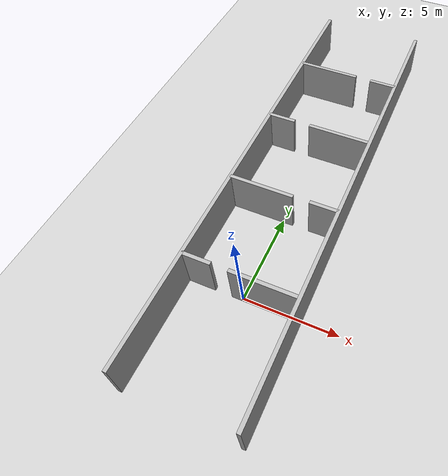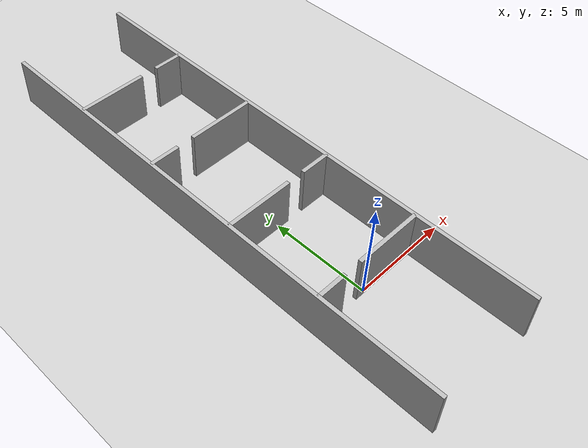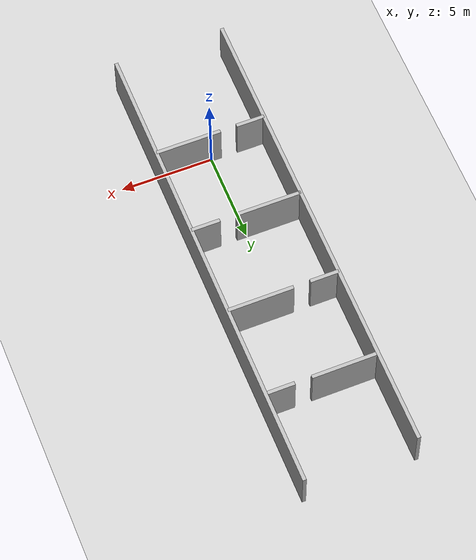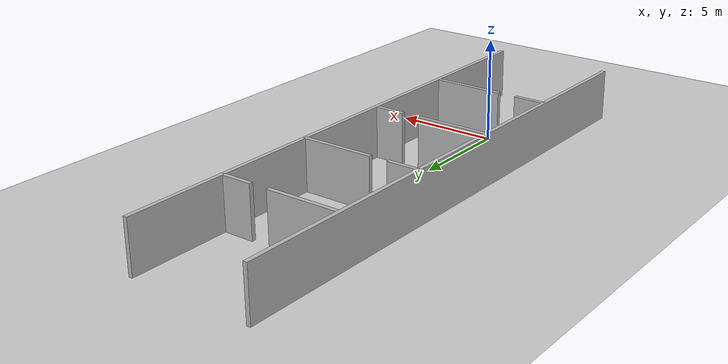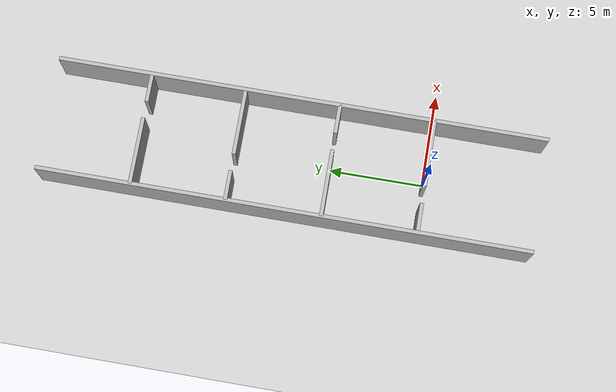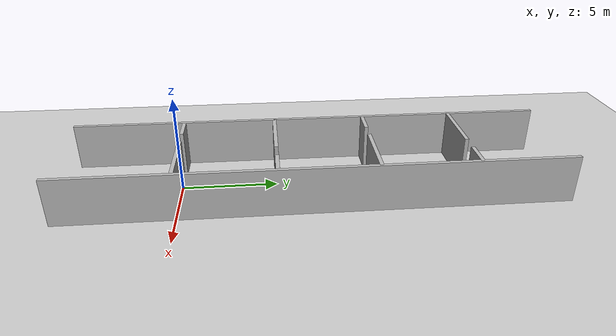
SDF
<sdf version='1.7'>
  <world name='default'>
    <light name='sun' type='directional'>
      <cast_shadows>1</cast_shadows>
      <pose>0 0 10 0 -0 0</pose>
      <diffuse>0.8 0.8 0.8 1</diffuse>
      <specular>0.2 0.2 0.2 1</specular>
      <attenuation>
        <range>1000</range>
        <constant>0.9</constant>
        <linear>0.01</linear>
        <quadratic>0.001</quadratic>
      </attenuation>
      <direction>-0.5 0.1 -0.9</direction>
      <spot><inner_angle>0</inner_angle><outer_angle>0</outer_angle><falloff>0</falloff></spot>
    </light>
    <model name='ground_plane'>
      <static>1</static>
      <link name='link'>
        <collision name='collision'>
          <geometry><plane><normal>0 0 1</normal><size>200 200</size></plane></geometry>
          <surface>
            <contact><collide_bitmask>65535</collide_bitmask><ode/></contact>
            <friction><ode><mu>100</mu><mu2>50</mu2></ode><torsional><ode/></torsional></friction>
            <bounce/>
          </surface>
          <max_contacts>10</max_contacts>
        </collision>
        <visual name='visual'>
          <cast_shadows>0</cast_shadows>
          <geometry><plane><normal>0 0 1</normal><size>200 200</size></plane></geometry>
          <material><script><uri>file://media/materials/scripts/gazebo.material</uri><name>Gazebo/Grey</name></script></material>
        </visual>
        <self_collide>0</self_collide>
        <enable_wind>0</enable_wind>
        <kinematic>0</kinematic>
      </link>
    </model>
    <gravity>0 0 -9.8</gravity>
    <magnetic_field>6e-06 2.3e-05 -4.2e-05</magnetic_field>
    <atmosphere type='adiabatic'/>
    <physics type='ode'>
      <max_step_size>0.001</max_step_size>
      <real_time_factor>1</real_time_factor>
      <real_time_update_rate>1000</real_time_update_rate>
    </physics>
    <scene><ambient>0.4 0.4 0.4 1</ambient><background>0.7 0.7 0.7 1</background><shadows>1</shadows></scene>
    <wind/>
    <spherical_coordinates>
      <surface_model>EARTH_WGS84</surface_model>
      <latitude_deg>0</latitude_deg><longitude_deg>0</longitude_deg>
      <elevation>0</elevation><heading_deg>0</heading_deg>
    </spherical_coordinates>

        <model name='clearance_corridor_left'>
        <static>true</static>
        <pose>-3.0 7.0 1.25 0 0 0</pose>
        <link name='link'>
            <collision name='collision'>
            <geometry>
                <box><size>0.2 26.0 2.5</size></box>
            </geometry>
            </collision>
            <visual name='visual'>
            <geometry>
                <box><size>0.2 26.0 2.5</size></box>
            </geometry>
            </visual>
        </link>
        </model>

        <model name='clearance_corridor_right'>
        <static>true</static>
        <pose>3.0 7.0 1.25 0 0 0</pose>
        <link name='link'>
            <collision name='collision'>
            <geometry>
                <box><size>0.2 26.0 2.5</size></box>
            </geometry>
            </collision>
            <visual name='visual'>
            <geometry>
                <box><size>0.2 26.0 2.5</size></box>
            </geometry>
            </visual>
        </link>
        </model>

        <model name='clearance_gate0_left'>
        <static>true</static>
        <pose>-2.225 0.0 1.25 0 0 0</pose>
        <link name='link'>
            <collision name='collision'>
            <geometry>
                <box><size>1.55 0.2 2.5</size></box>
            </geometry>
            </collision>
            <visual name='visual'>
            <geometry>
                <box><size>1.55 0.2 2.5</size></box>
            </geometry>
            </visual>
        </link>
        </model>

        <model name='clearance_gate0_right'>
        <static>true</static>
        <pose>1.225 0.0 1.25 0 0 0</pose>
        <link name='link'>
            <collision name='collision'>
            <geometry>
                <box><size>3.55 0.2 2.5</size></box>
            </geometry>
            </collision>
            <visual name='visual'>
            <geometry>
                <box><size>3.55 0.2 2.5</size></box>
            </geometry>
            </visual>
        </link>
        </model>

        <model name='clearance_gate1_left'>
        <static>true</static>
        <pose>-1.225 5.0 1.25 0 0 0</pose>
        <link name='link'>
            <collision name='collision'>
            <geometry>
                <box><size>3.55 0.2 2.5</size></box>
            </geometry>
            </collision>
            <visual name='visual'>
            <geometry>
                <box><size>3.55 0.2 2.5</size></box>
            </geometry>
            </visual>
        </link>
        </model>

        <model name='clearance_gate1_right'>
        <static>true</static>
        <pose>2.225 5.0 1.25 0 0 0</pose>
        <link name='link'>
            <collision name='collision'>
            <geometry>
                <box><size>1.55 0.2 2.5</size></box>
            </geometry>
            </collision>
            <visual name='visual'>
            <geometry>
                <box><size>1.55 0.2 2.5</size></box>
            </geometry>
            </visual>
        </link>
        </model>

        <model name='clearance_gate2_left'>
        <static>true</static>
        <pose>-2.225 10.0 1.25 0 0 0</pose>
        <link name='link'>
            <collision name='collision'>
            <geometry>
                <box><size>1.55 0.2 2.5</size></box>
            </geometry>
            </collision>
            <visual name='visual'>
            <geometry>
                <box><size>1.55 0.2 2.5</size></box>
            </geometry>
            </visual>
        </link>
        </model>

        <model name='clearance_gate2_right'>
        <static>true</static>
        <pose>1.225 10.0 1.25 0 0 0</pose>
        <link name='link'>
            <collision name='collision'>
            <geometry>
                <box><size>3.55 0.2 2.5</size></box>
            </geometry>
            </collision>
            <visual name='visual'>
            <geometry>
                <box><size>3.55 0.2 2.5</size></box>
            </geometry>
            </visual>
        </link>
        </model>

        <model name='clearance_gate3_left'>
        <static>true</static>
        <pose>-1.225 15.0 1.25 0 0 0</pose>
        <link name='link'>
            <collision name='collision'>
            <geometry>
                <box><size>3.55 0.2 2.5</size></box>
            </geometry>
            </collision>
            <visual name='visual'>
            <geometry>
                <box><size>3.55 0.2 2.5</size></box>
            </geometry>
            </visual>
        </link>
        </model>

        <model name='clearance_gate3_right'>
        <static>true</static>
        <pose>2.225 15.0 1.25 0 0 0</pose>
        <link name='link'>
            <collision name='collision'>
            <geometry>
                <box><size>1.55 0.2 2.5</size></box>
            </geometry>
            </collision>
            <visual name='visual'>
            <geometry>
                <box><size>1.55 0.2 2.5</size></box>
            </geometry>
            </visual>
        </link>
        </model>

  </world>
</sdf>
